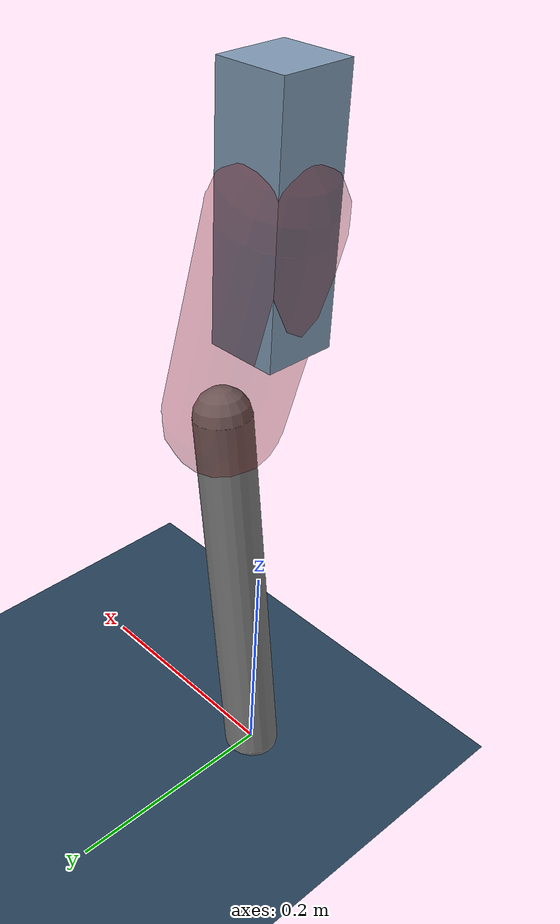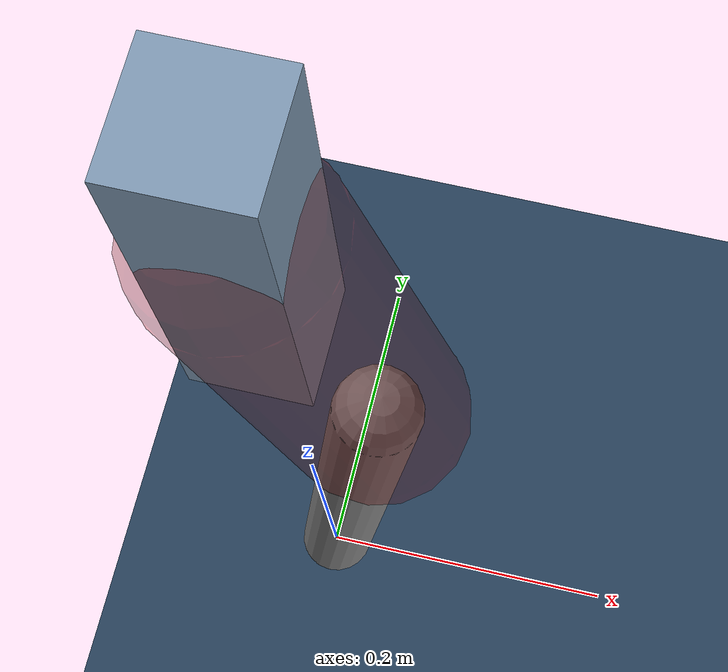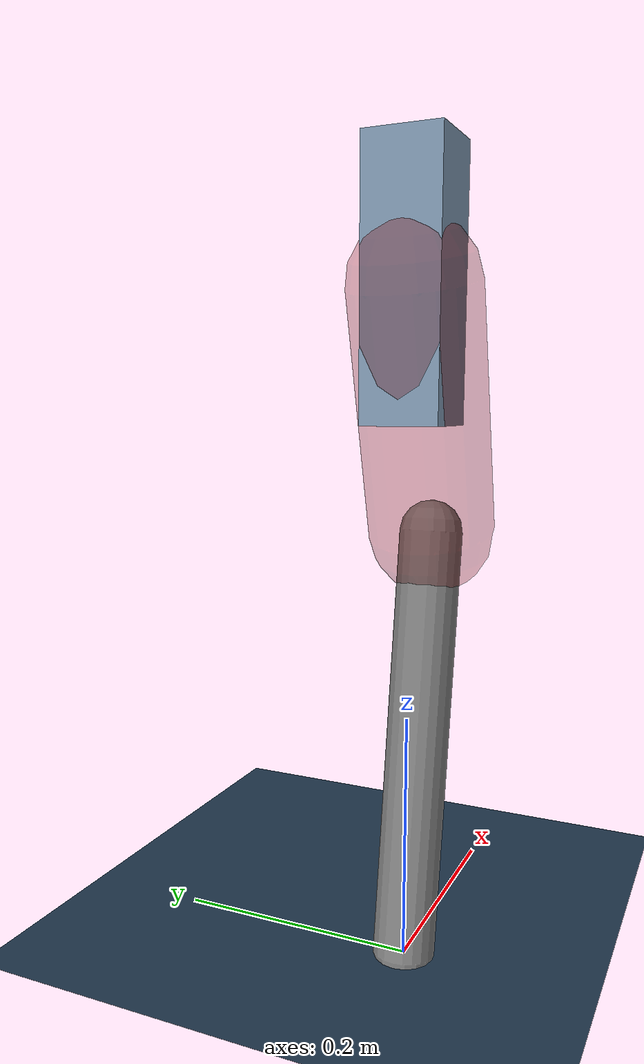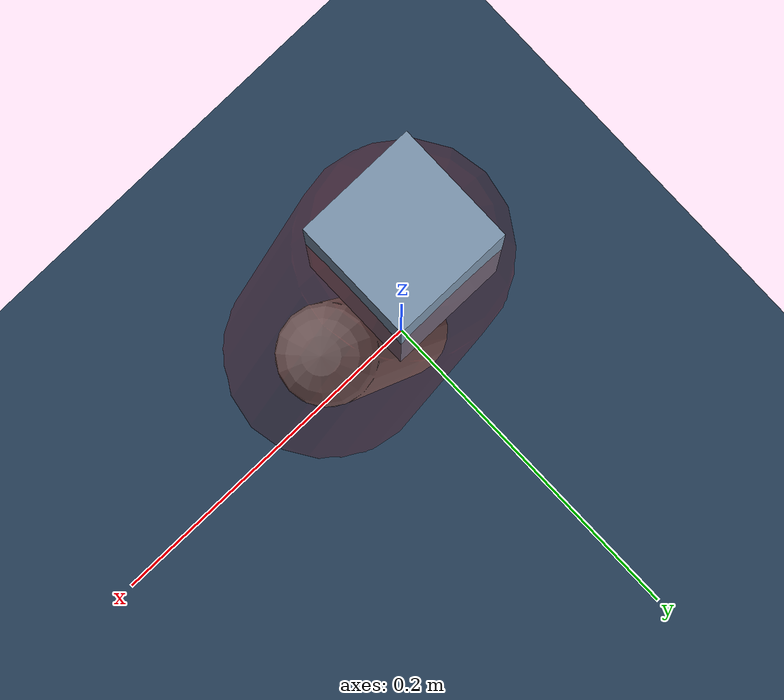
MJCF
<mujoco model="Hopper2D">
	<compiler inertiafromgeom="true" angle="radian" />
	<option timestep="0.001" integrator="implicit" cone="elliptic" solver="Newton" tolerance="1e-10" />

	<default>
		<geom contype="1" conaffinity="1" condim="3" friction="2 0.005 0.0001" solref="0.005 1" />
		<joint limited="true" damping="0.1" />
	</default>

	<asset>
		<texture name="skybox" type="skybox" builtin="gradient" rgb1=".4 .6 .8" rgb2="0 0 0" width="800" height="800" />
		<texture name="grid" type="2d" builtin="checker" rgb1=".1 .2 .3" rgb2=".2 .3 .4" width="300" height="300" mark="edge" markrgb=".2 .3 .4" />
		<material name="ground" texture="grid" texrepeat="1 1" texuniform="true" reflectance="0.1" />
		<material name="leg" rgba="0.5 0.6 0.7 1" />
	</asset>

	<worldbody>

		<geom name="floor" type="plane" size="5 5 0.25" material="ground" />

		<light directional="false" diffuse="0.8 0.8 0.8" specular="0.3 0.3 0.3" pos="0 0 2" dir="0 0 -1" />
		<light mode="targetbodycom" target="base" directional="false" diffuse="0.8 0.8 0.8" specular="0.3 0.3 0.3" pos="0 0 2" dir="0 0 -1" />

		<camera name="fixed" pos="0 -2 1" xyaxes="1 0 0 0 0 1" />
		<camera name="tracking" mode="trackcom" pos="0 -3 1" />

		<body name="root" pos="0 0 0.5269188940401857">
			<joint name="slide_x" type="slide" axis="1 0 0" range="-100 100" />
			<joint name="slide_z" type="slide" axis="0 0 1" range="0 10" />

			<body name="base" pos="0 0 0">
				<geom name="torso" type="box" size="0.03 0.03 0.1" mass="1.7770000000000001" material="leg" />

				<body name="link1" pos="0 0 0" euler="0 1.3093854765440684 0">
					<joint type="hinge" axis="0 -1 0" pos="0 0 0" name="hinge1" limited="true" range="-3.14 3.14" stiffness="0" damping="0.1" />
					<geom name="thigh" type="capsule" fromto="0 0 0 0.1906425249126765 0 0" size="0.05" rgba="0.5 0 0 0.3" mass="0.7065420597904236" />

					<body name="link2" pos="0.1906425249126765 0 0" euler="0 0.4041816302203809 0">
						<joint type="hinge" axis="0 -1 0" pos="0 0 0" name="hinge2" limited="true" range="-3.14 3.14" stiffness="0" damping="0.1" />
						<geom name="shank" type="capsule" fromto="0 0 0 0.3462763691275092 0 0" size="0.025" mass="0.5209210953020074" />

					</body>
				</body>
			</body>
		</body>
	</worldbody>

	<actuator>
		<motor name="torque1" joint="hinge1" ctrlrange="-39.016648608047625 39.016648608047625" ctrllimited="true" gear="1" />
		<motor name="torque2" joint="hinge2" ctrlrange="-82.04594574598714 82.04594574598714" ctrllimited="true" gear="1" />
	</actuator>
</mujoco>
